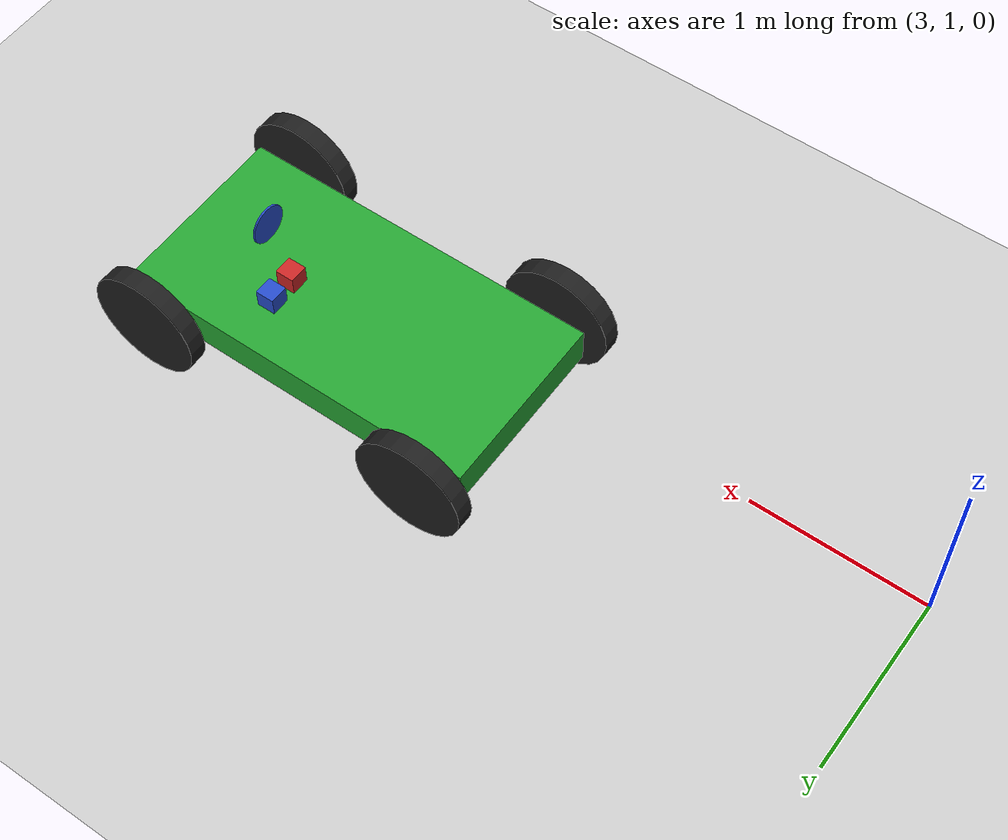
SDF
<sdf version="1.6">
 <world name="default">
  <physics name="default_physics" default="0" type="ode">
   <ode>
    <solver>
     <type>quick</type>
     <iters>10</iters>
     <sor>1.3</sor>
     <use_dynamic_moi_rescaling>0</use_dynamic_moi_rescaling>
    </solver>
    <constraints>
     <cfm>0</cfm>
     <erp>0.2</erp>
     <contact_max_correcting_vel>100</contact_max_correcting_vel>
     <contact_surface_layer>0.001</contact_surface_layer>
    </constraints>
   </ode>
   <max_step_size>0.002</max_step_size>
   <real_time_factor>1</real_time_factor>
   <real_time_update_rate>500</real_time_update_rate>
  </physics>
  <include><uri>model://sun</uri></include>
  <model name="ground_plane">
   <static>true</static>
   <link name="link">
    <collision name="collision">
     <geometry><plane><normal>0 0 1</normal><size>5000 5000</size></plane></geometry>
     <surface><friction><ode><mu>1</mu><mu2>1</mu2></ode></friction></surface>
    </collision>
    <visual name="runway">
     <pose>700 0 0.005 0 0 0</pose>
     <cast_shadows>false</cast_shadows>
     <geometry><plane><normal>0 0 1</normal><size>1829 45</size></plane></geometry>
     <material>
      <script>
       <uri>file:///media/student/code2/px4-1.5/Firmware/Tools/sitl_gazebo/worlds/wang.material</uri>
       <name>Gazebo/Runway</name>
      </script>
     </material>
    </visual>
    <visual name="grass">
     <pose>0 0 -0.1 0 0 0</pose>
     <cast_shadows>false</cast_shadows>
     <geometry><plane><normal>0 0 1</normal><size>5000 5000</size></plane></geometry>
     <material>
      <script>
       <uri>file:///media/student/code2/px4-1.5/Firmware/Tools/sitl_gazebo/worlds/wang.material</uri>
       <name>Gazebo/VSUfarm</name>
      </script>
     </material>
    </visual>
   </link>
  </model>
  <include><uri>model://utility_cart</uri><pose>6 1.5 0.19 0 0 0</pose></include>
  <model name="apriltag1"><pose>3 1 0 0 0 0</pose><include><uri>model://apriltag1</uri></include></model>
 </world>
</sdf>

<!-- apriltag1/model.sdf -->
<sdf version="1.6">
  <model name="apriltag1">
    <link name="link">
      <inertial>
        <mass>0.0000005</mass>
        <inertia>
          <ixx>0.00001</ixx>
          <ixy>0</ixy>
          <ixz>0</ixz>
          <iyy>0.00001</iyy>
          <iyz>0</iyz>
          <izz>0.00001</izz>
        </inertia>
        <pose frame=''>0 0 0 0 -0 0</pose>
      </inertial>
      <pose frame=''>0 0 -0 0 -0 0</pose>
      <gravity>1</gravity>
      <self_collide>0</self_collide>
      <kinematic>0</kinematic>
      <enable_wind>0</enable_wind>
      <visual name="visual">
        <geometry>
          <mesh>
            <uri>model://apriltag1/meshes/apriltag1.dae</uri>
          <scale>2 0.04 0.04</scale></mesh>
        </geometry>
      </visual>
      <collision name='collision'>
        <laser_retro>0</laser_retro>
        <max_contacts>10</max_contacts>
        <pose frame=''>0 0 0 0 -0 0</pose>
        <geometry>
          <mesh>
            <uri>model://apriltag1/meshes/apriltag1.dae</uri>
          <scale>2 0.04 0.04</scale></mesh>
        </geometry>
        <surface>
          <friction>
            <ode>
              <mu>1</mu>
              <mu2>1</mu2>
              <fdir1>0 0 0</fdir1>
              <slip1>0</slip1>
              <slip2>0</slip2>
            </ode>
            <torsional>
              <coefficient>1</coefficient>
              <patch_radius>0</patch_radius>
              <surface_radius>0</surface_radius>
              <use_patch_radius>1</use_patch_radius>
              <ode>
                <slip>0</slip>
              </ode>
            </torsional>
          </friction>
          <bounce>
            <restitution_coefficient>0</restitution_coefficient>
            <threshold>1e+06</threshold>
          </bounce>
          <contact>
            <collide_without_contact>0</collide_without_contact>
            <collide_without_contact_bitmask>1</collide_without_contact_bitmask>
            <collide_bitmask>1</collide_bitmask>
            <ode>
              <soft_cfm>0</soft_cfm>
              <soft_erp>0.2</soft_erp>
              <kp>1e+13</kp>
              <kd>1</kd>
              <max_vel>0.01</max_vel>
              <min_depth>0</min_depth>
            </ode>
            <bullet>
              <split_impulse>1</split_impulse>
              <split_impulse_penetration_threshold>-0.01</split_impulse_penetration_threshold>
              <soft_cfm>0</soft_cfm>
              <soft_erp>0.2</soft_erp>
              <kp>1e+13</kp>
              <kd>1</kd>
            </bullet>
          </contact>
        </surface>
      </collision>
    </link>
    <static>0</static>
    <allow_auto_disable>1</allow_auto_disable>
  </model>
</sdf>

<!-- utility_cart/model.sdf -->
<sdf version="1.5">
  <model name="utility_cart">
    <link name="chassis">
      <pose>0 0 0.3 0 0 0</pose>
      <collision name="collision">
        <geometry>
          <box>
            <size>2.0 1.0 0.2</size>
          </box>
        </geometry>
      </collision>
      <visual name="visual">
        <geometry>
          <box>
            <size>2.0 1.0 0.2</size>
          </box>
        </geometry>
        <material>
          <script>
            <uri>file://media/materials/scripts/gazebo.material</uri>
            <name>Gazebo/Green</name>
          </script>
        </material>
      </visual>
    </link>
    <link name="front_left_wheel">
      <pose>0.8 0.6 0.3 0 1.5707 1.5707</pose>
      <collision name="collision">
        <geometry>
          <cylinder>
            <radius>0.3</radius>
            <length>0.1</length>
          </cylinder>
        </geometry>
      </collision>
      <visual name="visual">
        <geometry>
          <cylinder>
            <radius>0.3</radius>
            <length>0.1</length>
          </cylinder>
        </geometry>
        <material>
          <script>
            <uri>file://media/materials/scripts/gazebo.material</uri>
            <name>Gazebo/Black</name>
          </script>
        </material>
      </visual>
    </link>
    <link name="front_right_wheel">
      <pose>0.8 -0.6 0.3 0 1.5707 1.5707</pose>
      <collision name="collision">
        <geometry>
          <cylinder>
            <radius>0.3</radius>
            <length>0.1</length>
          </cylinder>
        </geometry>
      </collision>
      <visual name="visual">
        <geometry>
          <cylinder>
            <radius>0.3</radius>
            <length>0.1</length>
          </cylinder>
        </geometry>
        <material>
          <script>
            <uri>file://media/materials/scripts/gazebo.material</uri>
            <name>Gazebo/Black</name>
          </script>
        </material>
      </visual>
    </link>
    <link name="back_right_wheel">
      <pose>-0.8 -0.6 0.3 0 1.5707 1.5707</pose>
      <collision name="collision">
        <geometry>
          <cylinder>
            <radius>0.3</radius>
            <length>0.1</length>
          </cylinder>
        </geometry>
      </collision>
      <visual name="visual">
        <geometry>
          <cylinder>
            <radius>0.3</radius>
            <length>0.1</length>
          </cylinder>
        </geometry>
        <material>
          <script>
            <uri>file://media/materials/scripts/gazebo.material</uri>
            <name>Gazebo/Black</name>
          </script>
        </material>
      </visual>
    </link>
    <link name="back_left_wheel">
      <pose>-0.8 0.6 0.3 0 1.5707 1.5707</pose>
      <collision name="collision">
        <geometry>
          <cylinder>
            <radius>0.3</radius>
            <length>0.1</length>
          </cylinder>
        </geometry>
      </collision>
      <visual name="visual">
        <geometry>
          <cylinder>
            <radius>0.3</radius>
            <length>0.1</length>
          </cylinder>
        </geometry>
        <material>
          <script>
            <uri>file://media/materials/scripts/gazebo.material</uri>
            <name>Gazebo/Black</name>
          </script>
        </material>
      </visual>
    </link>
    <link name="gas_pedal">
      <pose>0.3 0.1 0.5 0 0 0</pose>
      <collision name="collision">
        <geometry>
          <box>
            <size>0.1 0.1 0.1</size>
          </box>
        </geometry>
      </collision>
      <visual name="visual">
        <geometry>
          <box>
            <size>0.1 0.1 0.1</size>
          </box>
        </geometry>
        <material>
          <script>
            <uri>file://media/materials/scripts/gazebo.material</uri>
            <name>Gazebo/Red</name>
          </script>
        </material>
      </visual>
    </link>
    <link name="brake_pedal">
      <pose>0.3 0.25 0.5 0 0 0</pose>
      <collision name="collision">
        <geometry>
          <box>
            <size>0.1 0.1 0.1</size>
          </box>
        </geometry>
      </collision>
      <visual name="visual">
        <geometry>
          <box>
            <size>0.1 0.1 0.1</size>
          </box>
        </geometry>
        <material>
          <script>
            <uri>file://media/materials/scripts/gazebo.material</uri>
            <name>Gazebo/Blue</name>
          </script>
        </material>
      </visual>
    </link>
    <link name="steering_wheel">
      <pose>0.3 0.2 1.0 0 1.5707 0</pose>
      <collision name="collision">
        <geometry>
          <cylinder>
            <radius>0.1</radius>
            <length>0.01</length>
          </cylinder>
        </geometry>
      </collision>
      <visual name="visual">
        <geometry>
          <cylinder>
            <radius>0.1</radius>
            <length>0.01</length>
          </cylinder>
        </geometry>
        <material>
          <script>
            <uri>file://media/materials/scripts/gazebo.material</uri>
            <name>Gazebo/Blue</name>
          </script>
        </material>
      </visual>
    </link>
    <joint type="prismatic" name="gas_joint">
      <parent>chassis</parent>
      <child>gas_pedal</child>
      <axis>
        <xyz>1 0 0</xyz>
        <limit>
          <lower>0</lower>
          <upper>0.2</upper>
        </limit>
        <use_parent_model_frame>true</use_parent_model_frame>
      </axis>
    </joint>
    <joint type="prismatic" name="brake_joint">
      <parent>chassis</parent>
      <child>brake_pedal</child>
      <axis>
        <xyz>1 0 0</xyz>
        <limit>
          <lower>0</lower>
          <upper>0.2</upper>
        </limit>
        <use_parent_model_frame>true</use_parent_model_frame>
      </axis>
    </joint>
    <joint type="revolute" name="steering_joint">
      <parent>chassis</parent>
      <child>steering_wheel</child>
      <axis>
        <xyz>1 0 0</xyz>
        <limit>
          <lower>-7.853</lower>
          <upper>7.853</upper>
        </limit>
        <use_parent_model_frame>true</use_parent_model_frame>
      </axis>
    </joint>
    <joint type="revolute2" name="front_left_joint">
      <parent>chassis</parent>
      <child>front_left_wheel</child>
      <axis>
        <xyz>0 0 1</xyz>
        <limit>
          <lower>0</lower>
          <upper>0</upper>
        </limit>
        <use_parent_model_frame>true</use_parent_model_frame>
      </axis>
      <axis2>
        <xyz>0 1 0</xyz>
        <use_parent_model_frame>true</use_parent_model_frame>
      </axis2>
      <physics>
        <ode>
          <limit>
            <cfm>0.0</cfm>
            <erp>0.9</erp>
          </limit>
        </ode>
      </physics>
    </joint>
    <joint type="revolute2" name="front_right_joint">
      <parent>chassis</parent>
      <child>front_right_wheel</child>
      <axis>
        <xyz>0 0 1</xyz>
        <limit>
          <lower>0</lower>
          <upper>0</upper>
        </limit>
        <use_parent_model_frame>true</use_parent_model_frame>
      </axis>
      <axis2>
        <xyz>0 1 0</xyz>
        <use_parent_model_frame>true</use_parent_model_frame>
      </axis2>
      <physics>
        <ode>
          <limit>
            <cfm>0.0</cfm>
            <erp>0.9</erp>
          </limit>
        </ode>
      </physics>
    </joint>
    <joint type="revolute2" name="back_right_joint">
      <parent>chassis</parent>
      <child>back_right_wheel</child>
      <axis>
        <xyz>0 0 1</xyz>
        <limit>
          <lower>0</lower>
          <upper>0</upper>
        </limit>
        <use_parent_model_frame>true</use_parent_model_frame>
      </axis>
      <axis2>
        <xyz>0 1 0</xyz>
        <use_parent_model_frame>true</use_parent_model_frame>
      </axis2>
      <physics>
        <ode>
          <limit>
            <cfm>0.0</cfm>
            <erp>0.9</erp>
          </limit>
        </ode>
      </physics>
    </joint>
    <joint type="revolute2" name="back_left_joint">
      <parent>chassis</parent>
      <child>back_left_wheel</child>
      <axis>
        <xyz>0 0 1</xyz>
        <limit>
          <lower>0</lower>
          <upper>0</upper>
        </limit>
        <use_parent_model_frame>true</use_parent_model_frame>
      </axis>
      <axis2>
        <xyz>0 1 0</xyz>
        <use_parent_model_frame>true</use_parent_model_frame>
      </axis2>
      <physics>
        <ode>
          <limit>
            <cfm>0.0</cfm>
            <erp>0.9</erp>
          </limit>
        </ode>
      </physics>
    </joint>
    <plugin filename="libVehiclePlugin.so" name="vehicle">
      <!-- Joints for each wheel -->
      <front_left>front_left_joint</front_left>
      <front_right>front_right_joint</front_right>
      <back_left>back_left_joint</back_left>
      <back_right>back_right_joint</back_right>
      <!-- Joint which controls the gas -->
      <gas>gas_joint</gas>
      <!-- Joint which controls the gas -->
      <brake>brake_joint</brake>
      <!-- Joint which controls the steering -->
      <steering>steering_joint</steering>
      <!-- Power is multiplied by "gas" to determine force applied to wheels -->
      <front_power>10</front_power>
      <rear_power>10</rear_power>
      <!-- The angle range the front tires can turn for steering, in radians -->
      <tire_angle_range>0.5</tire_angle_range>
      <!-- Maximum speed for the car in meters/second -->
      <max_speed>10</max_speed>
      <!-- Factor for the down-force applied as the car travels faster -->
      <!-- A larger number increases the down force -->
      <aero_load>0.1</aero_load>
    </plugin>
  </model>
</sdf>
